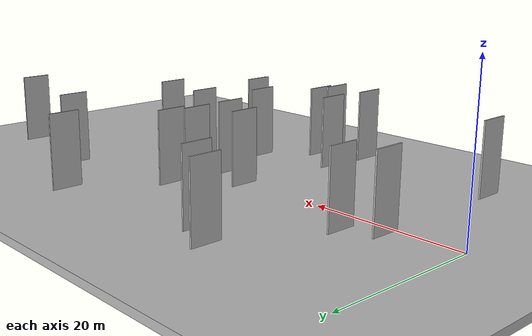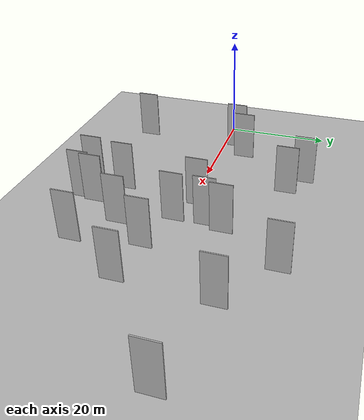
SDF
<?xml version="1.0" encoding="utf-8"?>

<sdf version="1.6">

   <world name="default">

      <gui fullscreen="0">

         <camera name="user_camera">

            <pose>-15 0 4.57585 0 0 0</pose>

            <view_controller>orbit</view_controller>

         </camera>

      </gui>

      <scene>

         <sky>

           <clouds>

             <speed>12</speed>

           </clouds>

         </sky>

         <ambient>0.4 0.4 0.4 1</ambient>

         <background>0.7 0.7 0.7 1</background>

         <shadows>1</shadows>

      </scene>

      <gravity>0 0 -9.8066</gravity>

      <magnetic_field>6e-06 2.3e-05 -4.2e-05</magnetic_field>

      <physics default="0" name="default_physics" type="ode">

         <ode>

            <solver>

               <type>quick</type>

               <iters>10</iters>

               <sor>1.0</sor>

               <use_dynamic_moi_rescaling>0</use_dynamic_moi_rescaling>

            </solver>

            <constraints>

               <cfm>0</cfm>

               <erp>0.2</erp>

               <contact_max_correcting_vel>100</contact_max_correcting_vel>

               <contact_surface_layer>0.001</contact_surface_layer>

            </constraints>

         </ode>

         <max_step_size>0.004</max_step_size>

         <real_time_factor>1</real_time_factor>

         <real_time_update_rate>250</real_time_update_rate>

      </physics>

      <light name="sun" type="directional">

         <cast_shadows>1</cast_shadows>

         <pose>0 0 10 0 0 0</pose>

         <diffuse>0.8 0.8 0.8 1</diffuse>

         <specular>0.2 0.2 0.2 1</specular>

         <attenuation>

            <range>1000</range>

            <constant>0.9</constant>

            <linear>0.01</linear>

            <quadratic>0.001</quadratic>

         </attenuation>

         <direction>-0.5 0.1 -0.9</direction>

      </light>

      <include>

         <name>ground_plane_1</name>

         <uri>model://HANNAS_ground_plane</uri>

         <pose>0 0 0  0 0 0</pose>

      </include>

      <include>

         <name>ground_plane_2</name>

         <uri>model://HANNAS_ground_plane</uri>

         <pose>100 0 0  0 0 0</pose>

      </include>

      <model name="HANNAS_wall_1">

         <static>1</static>

         <pose frame="">46.4453 -15.2437 0.0 0.000000 0.000000 1.570796</pose>

         <link name="link">

            <pose frame="">0 0 5.00 0 0 0</pose>

            <collision name="collision">

               <geometry>

                  <box>

                     <size>4.00 0.2 10.00</size>

                  </box>

               </geometry>

               <max_contacts>10</max_contacts>

               <surface>

                  <contact>

                     <ode/>

                  </contact>

                  <bounce/>

                  <friction>

                     <torsional>

                        <ode/>

                     </torsional>

                     <ode/>

                  </friction>

               </surface>

            </collision>

            <visual name="visual">

               <cast_shadows>0</cast_shadows>

               <geometry>

                  <box>

                     <size>4.00 0.2 10.00</size>

                  </box>

               </geometry>

               <material>

                  <script>

                     <uri>model://HANNAS_wall/materials/scripts</uri>

                     <uri>model://HANNAS_wall/materials/textures</uri>

                     <name>vrc/HANNAS_wall</name>

                  </script>

               </material>

            </visual>

            <self_collide>0</self_collide>

            <enable_wind>0</enable_wind>

            <kinematic>0</kinematic>

         </link>

      </model>

      <model name="HANNAS_wall_2">

         <static>1</static>

         <pose frame="">36.3935 4.7524 0.0 0.000000 0.000000 1.570796</pose>

         <link name="link">

            <pose frame="">0 0 5.00 0 0 0</pose>

            <collision name="collision">

               <geometry>

                  <box>

                     <size>4.00 0.2 10.00</size>

                  </box>

               </geometry>

               <max_contacts>10</max_contacts>

               <surface>

                  <contact>

                     <ode/>

                  </contact>

                  <bounce/>

                  <friction>

                     <torsional>

                        <ode/>

                     </torsional>

                     <ode/>

                  </friction>

               </surface>

            </collision>

            <visual name="visual">

               <cast_shadows>0</cast_shadows>

               <geometry>

                  <box>

                     <size>4.00 0.2 10.00</size>

                  </box>

               </geometry>

               <material>

                  <script>

                     <uri>model://HANNAS_wall/materials/scripts</uri>

                     <uri>model://HANNAS_wall/materials/textures</uri>

                     <name>vrc/HANNAS_wall</name>

                  </script>

               </material>

            </visual>

            <self_collide>0</self_collide>

            <enable_wind>0</enable_wind>

            <kinematic>0</kinematic>

         </link>

      </model>

      <model name="HANNAS_wall_3">

         <static>1</static>

         <pose frame="">18.2074 18.4902 0.0 0.000000 0.000000 1.570796</pose>

         <link name="link">

            <pose frame="">0 0 5.00 0 0 0</pose>

            <collision name="collision">

               <geometry>

                  <box>

                     <size>4.00 0.2 10.00</size>

                  </box>

               </geometry>

               <max_contacts>10</max_contacts>

               <surface>

                  <contact>

                     <ode/>

                  </contact>

                  <bounce/>

                  <friction>

                     <torsional>

                        <ode/>

                     </torsional>

                     <ode/>

                  </friction>

               </surface>

            </collision>

            <visual name="visual">

               <cast_shadows>0</cast_shadows>

               <geometry>

                  <box>

                     <size>4.00 0.2 10.00</size>

                  </box>

               </geometry>

               <material>

                  <script>

                     <uri>model://HANNAS_wall/materials/scripts</uri>

                     <uri>model://HANNAS_wall/materials/textures</uri>

                     <name>vrc/HANNAS_wall</name>

                  </script>

               </material>

            </visual>

            <self_collide>0</self_collide>

            <enable_wind>0</enable_wind>

            <kinematic>0</kinematic>

         </link>

      </model>

      <model name="HANNAS_wall_4">

         <static>1</static>

         <pose frame="">53.2501 -4.4651 0.0 0.000000 0.000000 1.570796</pose>

         <link name="link">

            <pose frame="">0 0 5.00 0 0 0</pose>

            <collision name="collision">

               <geometry>

                  <box>

                     <size>4.00 0.2 10.00</size>

                  </box>

               </geometry>

               <max_contacts>10</max_contacts>

               <surface>

                  <contact>

                     <ode/>

                  </contact>

                  <bounce/>

                  <friction>

                     <torsional>

                        <ode/>

                     </torsional>

                     <ode/>

                  </friction>

               </surface>

            </collision>

            <visual name="visual">

               <cast_shadows>0</cast_shadows>

               <geometry>

                  <box>

                     <size>4.00 0.2 10.00</size>

                  </box>

               </geometry>

               <material>

                  <script>

                     <uri>model://HANNAS_wall/materials/scripts</uri>

                     <uri>model://HANNAS_wall/materials/textures</uri>

                     <name>vrc/HANNAS_wall</name>

                  </script>

               </material>

            </visual>

            <self_collide>0</self_collide>

            <enable_wind>0</enable_wind>

            <kinematic>0</kinematic>

         </link>

      </model>

      <model name="HANNAS_wall_5">

         <static>1</static>

         <pose frame="">22.6965 15.9292 0.0 0.000000 0.000000 1.570796</pose>

         <link name="link">

            <pose frame="">0 0 5.00 0 0 0</pose>

            <collision name="collision">

               <geometry>

                  <box>

                     <size>4.00 0.2 10.00</size>

                  </box>

               </geometry>

               <max_contacts>10</max_contacts>

               <surface>

                  <contact>

                     <ode/>

                  </contact>

                  <bounce/>

                  <friction>

                     <torsional>

                        <ode/>

                     </torsional>

                     <ode/>

                  </friction>

               </surface>

            </collision>

            <visual name="visual">

               <cast_shadows>0</cast_shadows>

               <geometry>

                  <box>

                     <size>4.00 0.2 10.00</size>

                  </box>

               </geometry>

               <material>

                  <script>

                     <uri>model://HANNAS_wall/materials/scripts</uri>

                     <uri>model://HANNAS_wall/materials/textures</uri>

                     <name>vrc/HANNAS_wall</name>

                  </script>

               </material>

            </visual>

            <self_collide>0</self_collide>

            <enable_wind>0</enable_wind>

            <kinematic>0</kinematic>

         </link>

      </model>

      <model name="HANNAS_wall_6">

         <static>1</static>

         <pose frame="">28.8618 -19.5170 0.0 0.000000 0.000000 1.570796</pose>

         <link name="link">

            <pose frame="">0 0 5.00 0 0 0</pose>

            <collision name="collision">

               <geometry>

                  <box>

                     <size>4.00 0.2 10.00</size>

                  </box>

               </geometry>

               <max_contacts>10</max_contacts>

               <surface>

                  <contact>

                     <ode/>

                  </contact>

                  <bounce/>

                  <friction>

                     <torsional>

                        <ode/>

                     </torsional>

                     <ode/>

                  </friction>

               </surface>

            </collision>

            <visual name="visual">

               <cast_shadows>0</cast_shadows>

               <geometry>

                  <box>

                     <size>4.00 0.2 10.00</size>

                  </box>

               </geometry>

               <material>

                  <script>

                     <uri>model://HANNAS_wall/materials/scripts</uri>

                     <uri>model://HANNAS_wall/materials/textures</uri>

                     <name>vrc/HANNAS_wall</name>

                  </script>

               </material>

            </visual>

            <self_collide>0</self_collide>

            <enable_wind>0</enable_wind>

            <kinematic>0</kinematic>

         </link>

      </model>

      <model name="HANNAS_wall_7">

         <static>1</static>

         <pose frame="">11.9529 5.2985 0.0 0.000000 0.000000 1.570796</pose>

         <link name="link">

            <pose frame="">0 0 5.00 0 0 0</pose>

            <collision name="collision">

               <geometry>

                  <box>

                     <size>4.00 0.2 10.00</size>

                  </box>

               </geometry>

               <max_contacts>10</max_contacts>

               <surface>

                  <contact>

                     <ode/>

                  </contact>

                  <bounce/>

                  <friction>

                     <torsional>

                        <ode/>

                     </torsional>

                     <ode/>

                  </friction>

               </surface>

            </collision>

            <visual name="visual">

               <cast_shadows>0</cast_shadows>

               <geometry>

                  <box>

                     <size>4.00 0.2 10.00</size>

                  </box>

               </geometry>

               <material>

                  <script>

                     <uri>model://HANNAS_wall/materials/scripts</uri>

                     <uri>model://HANNAS_wall/materials/textures</uri>

                     <name>vrc/HANNAS_wall</name>

                  </script>

               </material>

            </visual>

            <self_collide>0</self_collide>

            <enable_wind>0</enable_wind>

            <kinematic>0</kinematic>

         </link>

      </model>

      <model name="HANNAS_wall_8">

         <static>1</static>

         <pose frame="">39.9564 -9.8889 0.0 0.000000 0.000000 1.570796</pose>

         <link name="link">

            <pose frame="">0 0 5.00 0 0 0</pose>

            <collision name="collision">

               <geometry>

                  <box>

                     <size>4.00 0.2 10.00</size>

                  </box>

               </geometry>

               <max_contacts>10</max_contacts>

               <surface>

                  <contact>

                     <ode/>

                  </contact>

                  <bounce/>

                  <friction>

                     <torsional>

                        <ode/>

                     </torsional>

                     <ode/>

                  </friction>

               </surface>

            </collision>

            <visual name="visual">

               <cast_shadows>0</cast_shadows>

               <geometry>

                  <box>

                     <size>4.00 0.2 10.00</size>

                  </box>

               </geometry>

               <material>

                  <script>

                     <uri>model://HANNAS_wall/materials/scripts</uri>

                     <uri>model://HANNAS_wall/materials/textures</uri>

                     <name>vrc/HANNAS_wall</name>

                  </script>

               </material>

            </visual>

            <self_collide>0</self_collide>

            <enable_wind>0</enable_wind>

            <kinematic>0</kinematic>

         </link>

      </model>

      <model name="HANNAS_wall_9">

         <static>1</static>

         <pose frame="">29.5938 -13.0239 0.0 0.000000 0.000000 1.570796</pose>

         <link name="link">

            <pose frame="">0 0 5.00 0 0 0</pose>

            <collision name="collision">

               <geometry>

                  <box>

                     <size>4.00 0.2 10.00</size>

                  </box>

               </geometry>

               <max_contacts>10</max_contacts>

               <surface>

                  <contact>

                     <ode/>

                  </contact>

                  <bounce/>

                  <friction>

                     <torsional>

                        <ode/>

                     </torsional>

                     <ode/>

                  </friction>

               </surface>

            </collision>

            <visual name="visual">

               <cast_shadows>0</cast_shadows>

               <geometry>

                  <box>

                     <size>4.00 0.2 10.00</size>

                  </box>

               </geometry>

               <material>

                  <script>

                     <uri>model://HANNAS_wall/materials/scripts</uri>

                     <uri>model://HANNAS_wall/materials/textures</uri>

                     <name>vrc/HANNAS_wall</name>

                  </script>

               </material>

            </visual>

            <self_collide>0</self_collide>

            <enable_wind>0</enable_wind>

            <kinematic>0</kinematic>

         </link>

      </model>

      <model name="HANNAS_wall_10">

         <static>1</static>

         <pose frame="">54.0908 11.7216 0.0 0.000000 0.000000 1.570796</pose>

         <link name="link">

            <pose frame="">0 0 5.00 0 0 0</pose>

            <collision name="collision">

               <geometry>

                  <box>

                     <size>4.00 0.2 10.00</size>

                  </box>

               </geometry>

               <max_contacts>10</max_contacts>

               <surface>

                  <contact>

                     <ode/>

                  </contact>

                  <bounce/>

                  <friction>

                     <torsional>

                        <ode/>

                     </torsional>

                     <ode/>

                  </friction>

               </surface>

            </collision>

            <visual name="visual">

               <cast_shadows>0</cast_shadows>

               <geometry>

                  <box>

                     <size>4.00 0.2 10.00</size>

                  </box>

               </geometry>

               <material>

                  <script>

                     <uri>model://HANNAS_wall/materials/scripts</uri>

                     <uri>model://HANNAS_wall/materials/textures</uri>

                     <name>vrc/HANNAS_wall</name>

                  </script>

               </material>

            </visual>

            <self_collide>0</self_collide>

            <enable_wind>0</enable_wind>

            <kinematic>0</kinematic>

         </link>

      </model>

      <model name="HANNAS_wall_11">

         <static>1</static>

         <pose frame="">35.0504 -16.5751 0.0 0.000000 0.000000 1.570796</pose>

         <link name="link">

            <pose frame="">0 0 5.00 0 0 0</pose>

            <collision name="collision">

               <geometry>

                  <box>

                     <size>4.00 0.2 10.00</size>

                  </box>

               </geometry>

               <max_contacts>10</max_contacts>

               <surface>

                  <contact>

                     <ode/>

                  </contact>

                  <bounce/>

                  <friction>

                     <torsional>

                        <ode/>

                     </torsional>

                     <ode/>

                  </friction>

               </surface>

            </collision>

            <visual name="visual">

               <cast_shadows>0</cast_shadows>

               <geometry>

                  <box>

                     <size>4.00 0.2 10.00</size>

                  </box>

               </geometry>

               <material>

                  <script>

                     <uri>model://HANNAS_wall/materials/scripts</uri>

                     <uri>model://HANNAS_wall/materials/textures</uri>

                     <name>vrc/HANNAS_wall</name>

                  </script>

               </material>

            </visual>

            <self_collide>0</self_collide>

            <enable_wind>0</enable_wind>

            <kinematic>0</kinematic>

         </link>

      </model>

      <model name="HANNAS_wall_12">

         <static>1</static>

         <pose frame="">44.4175 18.8618 0.0 0.000000 0.000000 1.570796</pose>

         <link name="link">

            <pose frame="">0 0 5.00 0 0 0</pose>

            <collision name="collision">

               <geometry>

                  <box>

                     <size>4.00 0.2 10.00</size>

                  </box>

               </geometry>

               <max_contacts>10</max_contacts>

               <surface>

                  <contact>

                     <ode/>

                  </contact>

                  <bounce/>

                  <friction>

                     <torsional>

                        <ode/>

                     </torsional>

                     <ode/>

                  </friction>

               </surface>

            </collision>

            <visual name="visual">

               <cast_shadows>0</cast_shadows>

               <geometry>

                  <box>

                     <size>4.00 0.2 10.00</size>

                  </box>

               </geometry>

               <material>

                  <script>

                     <uri>model://HANNAS_wall/materials/scripts</uri>

                     <uri>model://HANNAS_wall/materials/textures</uri>

                     <name>vrc/HANNAS_wall</name>

                  </script>

               </material>

            </visual>

            <self_collide>0</self_collide>

            <enable_wind>0</enable_wind>

            <kinematic>0</kinematic>

         </link>

      </model>

      <model name="HANNAS_wall_13">

         <static>1</static>

         <pose frame="">36.5735 -0.9675 0.0 0.000000 0.000000 1.570796</pose>

         <link name="link">

            <pose frame="">0 0 5.00 0 0 0</pose>

            <collision name="collision">

               <geometry>

                  <box>

                     <size>4.00 0.2 10.00</size>

                  </box>

               </geometry>

               <max_contacts>10</max_contacts>

               <surface>

                  <contact>

                     <ode/>

                  </contact>

                  <bounce/>

                  <friction>

                     <torsional>

                        <ode/>

                     </torsional>

                     <ode/>

                  </friction>

               </surface>

            </collision>

            <visual name="visual">

               <cast_shadows>0</cast_shadows>

               <geometry>

                  <box>

                     <size>4.00 0.2 10.00</size>

                  </box>

               </geometry>

               <material>

                  <script>

                     <uri>model://HANNAS_wall/materials/scripts</uri>

                     <uri>model://HANNAS_wall/materials/textures</uri>

                     <name>vrc/HANNAS_wall</name>

                  </script>

               </material>

            </visual>

            <self_collide>0</self_collide>

            <enable_wind>0</enable_wind>

            <kinematic>0</kinematic>

         </link>

      </model>

      <model name="HANNAS_wall_14">

         <static>1</static>

         <pose frame="">69.9493 8.6833 0.0 0.000000 0.000000 1.570796</pose>

         <link name="link">

            <pose frame="">0 0 5.00 0 0 0</pose>

            <collision name="collision">

               <geometry>

                  <box>

                     <size>4.00 0.2 10.00</size>

                  </box>

               </geometry>

               <max_contacts>10</max_contacts>

               <surface>

                  <contact>

                     <ode/>

                  </contact>

                  <bounce/>

                  <friction>

                     <torsional>

                        <ode/>

                     </torsional>

                     <ode/>

                  </friction>

               </surface>

            </collision>

            <visual name="visual">

               <cast_shadows>0</cast_shadows>

               <geometry>

                  <box>

                     <size>4.00 0.2 10.00</size>

                  </box>

               </geometry>

               <material>

                  <script>

                     <uri>model://HANNAS_wall/materials/scripts</uri>

                     <uri>model://HANNAS_wall/materials/textures</uri>

                     <name>vrc/HANNAS_wall</name>

                  </script>

               </material>

            </visual>

            <self_collide>0</self_collide>

            <enable_wind>0</enable_wind>

            <kinematic>0</kinematic>

         </link>

      </model>

      <model name="HANNAS_wall_15">

         <static>1</static>

         <pose frame="">34.4756 -19.2396 0.0 0.000000 0.000000 1.570796</pose>

         <link name="link">

            <pose frame="">0 0 5.00 0 0 0</pose>

            <collision name="collision">

               <geometry>

                  <box>

                     <size>4.00 0.2 10.00</size>

                  </box>

               </geometry>

               <max_contacts>10</max_contacts>

               <surface>

                  <contact>

                     <ode/>

                  </contact>

                  <bounce/>

                  <friction>

                     <torsional>

                        <ode/>

                     </torsional>

                     <ode/>

                  </friction>

               </surface>

            </collision>

            <visual name="visual">

               <cast_shadows>0</cast_shadows>

               <geometry>

                  <box>

                     <size>4.00 0.2 10.00</size>

                  </box>

               </geometry>

               <material>

                  <script>

                     <uri>model://HANNAS_wall/materials/scripts</uri>

                     <uri>model://HANNAS_wall/materials/textures</uri>

                     <name>vrc/HANNAS_wall</name>

                  </script>

               </material>

            </visual>

            <self_collide>0</self_collide>

            <enable_wind>0</enable_wind>

            <kinematic>0</kinematic>

         </link>

      </model>

      <model name="HANNAS_wall_16">

         <static>1</static>

         <pose frame="">37.5236 7.8915 0.0 0.000000 0.000000 1.570796</pose>

         <link name="link">

            <pose frame="">0 0 5.00 0 0 0</pose>

            <collision name="collision">

               <geometry>

                  <box>

                     <size>4.00 0.2 10.00</size>

                  </box>

               </geometry>

               <max_contacts>10</max_contacts>

               <surface>

                  <contact>

                     <ode/>

                  </contact>

                  <bounce/>

                  <friction>

                     <torsional>

                        <ode/>

                     </torsional>

                     <ode/>

                  </friction>

               </surface>

            </collision>

            <visual name="visual">

               <cast_shadows>0</cast_shadows>

               <geometry>

                  <box>

                     <size>4.00 0.2 10.00</size>

                  </box>

               </geometry>

               <material>

                  <script>

                     <uri>model://HANNAS_wall/materials/scripts</uri>

                     <uri>model://HANNAS_wall/materials/textures</uri>

                     <name>vrc/HANNAS_wall</name>

                  </script>

               </material>

            </visual>

            <self_collide>0</self_collide>

            <enable_wind>0</enable_wind>

            <kinematic>0</kinematic>

         </link>

      </model>

      <model name="HANNAS_wall_17">

         <static>1</static>

         <pose frame="">8.0072 -16.7221 0.0 0.000000 0.000000 1.570796</pose>

         <link name="link">

            <pose frame="">0 0 5.00 0 0 0</pose>

            <collision name="collision">

               <geometry>

                  <box>

                     <size>4.00 0.2 10.00</size>

                  </box>

               </geometry>

               <max_contacts>10</max_contacts>

               <surface>

                  <contact>

                     <ode/>

                  </contact>

                  <bounce/>

                  <friction>

                     <torsional>

                        <ode/>

                     </torsional>

                     <ode/>

                  </friction>

               </surface>

            </collision>

            <visual name="visual">

               <cast_shadows>0</cast_shadows>

               <geometry>

                  <box>

                     <size>4.00 0.2 10.00</size>

                  </box>

               </geometry>

               <material>

                  <script>

                     <uri>model://HANNAS_wall/materials/scripts</uri>

                     <uri>model://HANNAS_wall/materials/textures</uri>

                     <name>vrc/HANNAS_wall</name>

                  </script>

               </material>

            </visual>

            <self_collide>0</self_collide>

            <enable_wind>0</enable_wind>

            <kinematic>0</kinematic>

         </link>

      </model>

      <model name="HANNAS_wall_18">

         <static>1</static>

         <pose frame="">44.7786 -3.4775 0.0 0.000000 0.000000 1.570796</pose>

         <link name="link">

            <pose frame="">0 0 5.00 0 0 0</pose>

            <collision name="collision">

               <geometry>

                  <box>

                     <size>4.00 0.2 10.00</size>

                  </box>

               </geometry>

               <max_contacts>10</max_contacts>

               <surface>

                  <contact>

                     <ode/>

                  </contact>

                  <bounce/>

                  <friction>

                     <torsional>

                        <ode/>

                     </torsional>

                     <ode/>

                  </friction>

               </surface>

            </collision>

            <visual name="visual">

               <cast_shadows>0</cast_shadows>

               <geometry>

                  <box>

                     <size>4.00 0.2 10.00</size>

                  </box>

               </geometry>

               <material>

                  <script>

                     <uri>model://HANNAS_wall/materials/scripts</uri>

                     <uri>model://HANNAS_wall/materials/textures</uri>

                     <name>vrc/HANNAS_wall</name>

                  </script>

               </material>

            </visual>

            <self_collide>0</self_collide>

            <enable_wind>0</enable_wind>

            <kinematic>0</kinematic>

         </link>

      </model>

      <model name="HANNAS_wall_19">

         <static>1</static>

         <pose frame="">31.0532 1.6059 0.0 0.000000 0.000000 1.570796</pose>

         <link name="link">

            <pose frame="">0 0 5.00 0 0 0</pose>

            <collision name="collision">

               <geometry>

                  <box>

                     <size>4.00 0.2 10.00</size>

                  </box>

               </geometry>

               <max_contacts>10</max_contacts>

               <surface>

                  <contact>

                     <ode/>

                  </contact>

                  <bounce/>

                  <friction>

                     <torsional>

                        <ode/>

                     </torsional>

                     <ode/>

                  </friction>

               </surface>

            </collision>

            <visual name="visual">

               <cast_shadows>0</cast_shadows>

               <geometry>

                  <box>

                     <size>4.00 0.2 10.00</size>

                  </box>

               </geometry>

               <material>

                  <script>

                     <uri>model://HANNAS_wall/materials/scripts</uri>

                     <uri>model://HANNAS_wall/materials/textures</uri>

                     <name>vrc/HANNAS_wall</name>

                  </script>

               </material>

            </visual>

            <self_collide>0</self_collide>

            <enable_wind>0</enable_wind>

            <kinematic>0</kinematic>

         </link>

      </model>

      <model name="HANNAS_wall_20">

         <static>1</static>

         <pose frame="">8.0128 2.8161 0.0 0.000000 0.000000 1.570796</pose>

         <link name="link">

            <pose frame="">0 0 5.00 0 0 0</pose>

            <collision name="collision">

               <geometry>

                  <box>

                     <size>4.00 0.2 10.00</size>

                  </box>

               </geometry>

               <max_contacts>10</max_contacts>

               <surface>

                  <contact>

                     <ode/>

                  </contact>

                  <bounce/>

                  <friction>

                     <torsional>

                        <ode/>

                     </torsional>

                     <ode/>

                  </friction>

               </surface>

            </collision>

            <visual name="visual">

               <cast_shadows>0</cast_shadows>

               <geometry>

                  <box>

                     <size>4.00 0.2 10.00</size>

                  </box>

               </geometry>

               <material>

                  <script>

                     <uri>model://HANNAS_wall/materials/scripts</uri>

                     <uri>model://HANNAS_wall/materials/textures</uri>

                     <name>vrc/HANNAS_wall</name>

                  </script>

               </material>

            </visual>

            <self_collide>0</self_collide>

            <enable_wind>0</enable_wind>

            <kinematic>0</kinematic>

         </link>

      </model>

   </world>

</sdf>

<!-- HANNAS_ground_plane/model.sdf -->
<sdf version="1.4">
<model name="HANNAS_ground_plane">
  <static>true</static>
    <link name="link">
      <collision name="collision">
        <geometry>
          <plane>
            <normal>0 0 1</normal>
            <size>1000 1000</size>
          </plane>
        </geometry>
        <surface>
          <friction>
            <ode>
              <mu>100</mu>
              <mu2>50</mu2>
            </ode>
          </friction>
        </surface>
      </collision>
      <visual name="visual">
        <cast_shadows>false</cast_shadows>
        <geometry>
          <plane>
            <normal>0 0 1</normal>
            <size>1000 1000</size>
          </plane>
        </geometry>
        <material>
          <script>
            <uri>model://HANNAS_ground_plane/materials/scripts/HANNAS_ground_plane.material</uri>
	    <uri>model://HANNAS_ground_plane/materials/textures</uri>
            <name>HANNASGroundPlane/Image</name>
          </script>
        </material>
      </visual>
    </link>
  </model>
</sdf>
